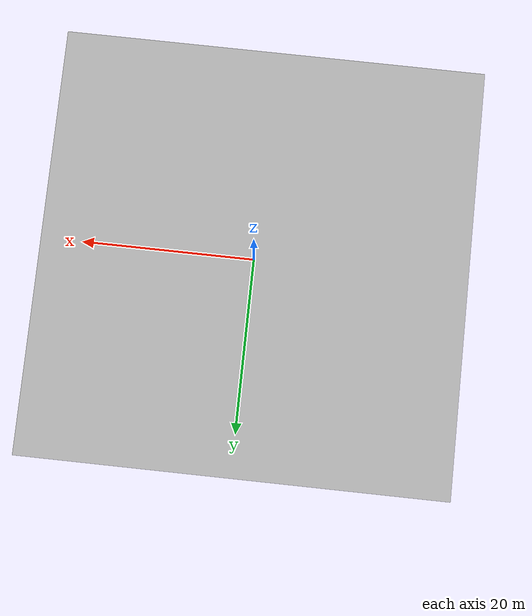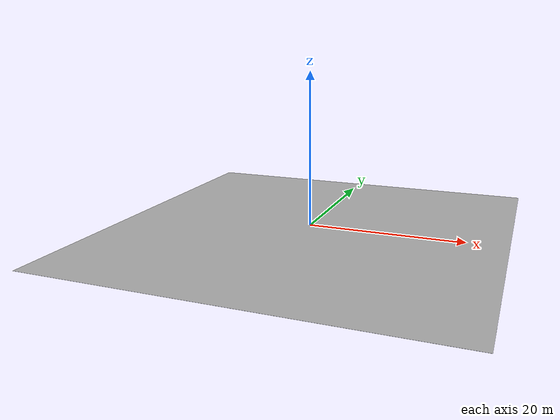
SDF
<?xml version="1.0"?>
<sdf version="1.7">
  <model name="ground">
    <link name="ground_link">
      <visual name="visual">
        <pose>0 0 -0.45 0 0 0</pose>
        <geometry>
          <box>
            <size>50 50 0.01</size>
          </box>
        </geometry>
        <material>
         <diffuse>0.75 0.75 0.75 1.0</diffuse>
        </material>
      </visual>
      <collision name="collision">
        <pose>0 0 -0.45 0 0 0</pose>
        <geometry>
          <box>
            <size>50 50 0.05</size>
          </box>
        </geometry>
      </collision>
    </link>
  </model>
</sdf>
